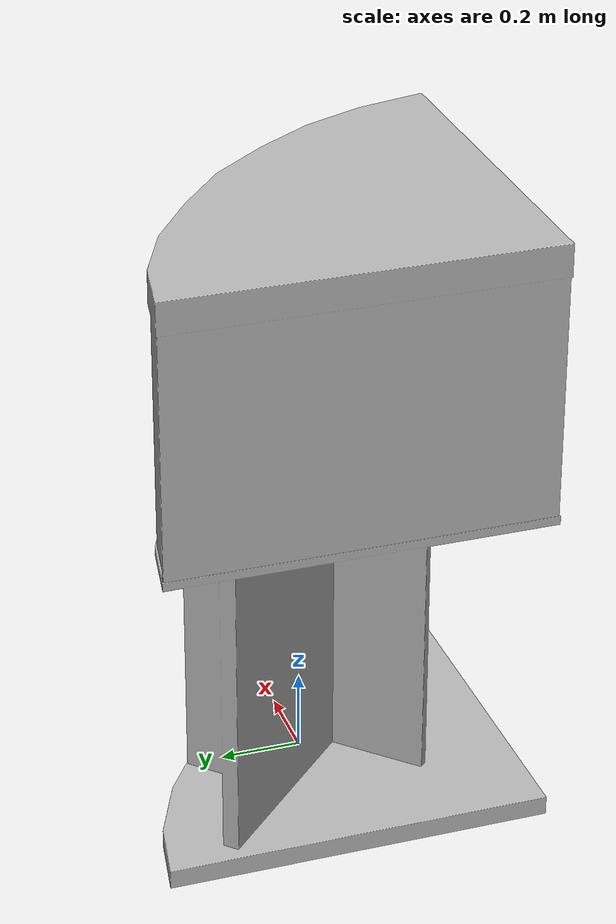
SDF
<?xml version='1.0'?>
<sdf version='1.4'>
  <model name='136'>
    <pose>0 0 0 0 0 0</pose>
    <static>true</static>
    <link name='link'>
      <collision name='collision'>
        <pose>0 0 0 0 0 0</pose>
        <geometry>
          <box>
            <size>0.939655 0.939739 2</size>
          </box>
        </geometry>
      </collision>
      <visual name='visual'>
        <pose>0 0 0 0 0 0</pose>
        <geometry>
          <mesh><uri>model://136/136.dae</uri></mesh>
        </geometry>
      </visual>
    </link>
  </model>
</sdf>
